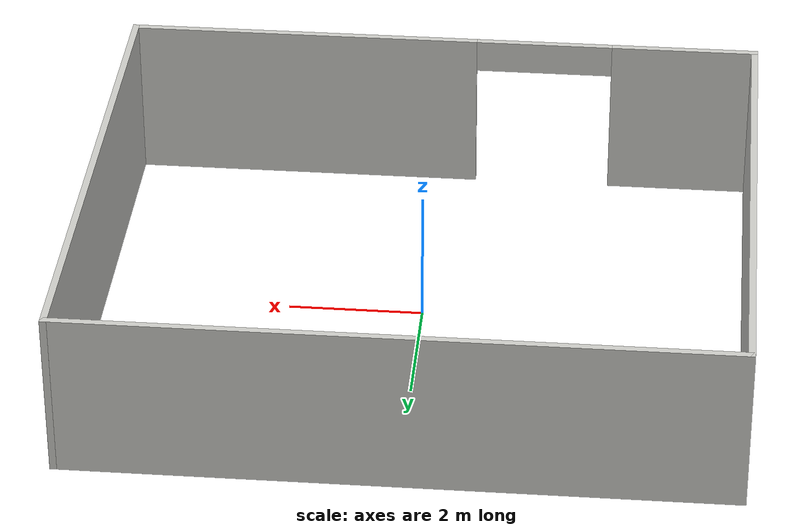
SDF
<?xml version='1.0'?>
<sdf version='1.6'>
  <model name='food_handling_unit'>
    <pose frame=''>0.011 0.19 0 0 -0 0</pose>
    <link name='Wall_5'>
      <collision name='Wall_5_Collision'>
        <geometry>
          <box>
            <size>9.70037 0.1 2.5</size>
          </box>
        </geometry>
        <pose frame=''>0 0 1.25 0 -0 0</pose>
      </collision>
      <visual name='Wall_5_Visual'>
        <pose frame=''>0 0 1.25 0 -0 0</pose>
        <geometry>
          <box>
            <size>9.70037 0.1 2.5</size>
          </box>
        </geometry>
        <material>
          <script>
            <uri>file://media/materials/scripts/gazebo.material</uri>
            <name>Gazebo/CeilingTiled</name>
          </script>
          <ambient>1 1 1 1</ambient>
        </material>
        <meta>
          <layer>0</layer>
        </meta>
      </visual>
      <pose frame=''>-0 4.05 0 0 -0 0</pose>
    </link>
    <link name='Wall_6'>
      <collision name='Wall_6_Collision'>
        <geometry>
          <box>
            <size>8.20047 0.1 2.5</size>
          </box>
        </geometry>
        <pose frame=''>0 0 1.25 0 -0 0</pose>
      </collision>
      <visual name='Wall_6_Visual'>
        <pose frame=''>0 0 1.25 0 -0 0</pose>
        <geometry>
          <box>
            <size>8.20047 0.1 2.5</size>
          </box>
        </geometry>
        <material>
          <script>
            <uri>file://media/materials/scripts/gazebo.material</uri>
            <name>Gazebo/CeilingTiled</name>
          </script>
          <ambient>1 1 1 1</ambient>
        </material>
        <meta>
          <layer>0</layer>
        </meta>
      </visual>
      <pose frame=''>4.8 -0 0 0 -0 -1.5708</pose>
    </link>
    <link name='Wall_7'>
      <pose frame=''>-0 -4.05 0 0 -0 3.14159</pose>
      <visual name='Wall_7_Visual_0'>
        <pose frame=''>-2.16197 0 1.25 0 -0 0</pose>
        <geometry>
          <box>
            <size>5.3757 0.1 2.5</size>
          </box>
        </geometry>
        <material>
          <script>
            <uri>file://media/materials/scripts/gazebo.material</uri>
            <name>Gazebo/CeilingTiled</name>
          </script>
          <ambient>1 1 1 1</ambient>
        </material>
        <meta>
          <layer>0</layer>
        </meta>
      </visual>
      <collision name='Wall_7_Collision_0'>
        <geometry>
          <box>
            <size>5.3757 0.1 2.5</size>
          </box>
        </geometry>
        <pose frame=''>-2.16197 0 1.25 0 -0 0</pose>
      </collision>
      <visual name='Wall_7_Visual_1'>
        <pose frame=''>3.7301 0 1.25 0 -0 0</pose>
        <geometry>
          <box>
            <size>2.23943 0.1 2.5</size>
          </box>
        </geometry>
        <material>
          <script>
            <uri>file://media/materials/scripts/gazebo.material</uri>
            <name>Gazebo/CeilingTiled</name>
          </script>
          <ambient>1 1 1 1</ambient>
        </material>
        <meta>
          <layer>0</layer>
        </meta>
      </visual>
      <collision name='Wall_7_Collision_1'>
        <geometry>
          <box>
            <size>2.23943 0.1 2.5</size>
          </box>
        </geometry>
        <pose frame=''>3.7301 0 1.25 0 -0 0</pose>
      </collision>
      <visual name='Wall_7_Visual_2'>
        <pose frame=''>1.56813 0 2.25 0 -0 0</pose>
        <geometry>
          <box>
            <size>2.0845 0.1 0.5</size>
          </box>
        </geometry>
        <material>
          <script>
            <uri>file://media/materials/scripts/gazebo.material</uri>
            <name>Gazebo/CeilingTiled</name>
          </script>
          <ambient>1 1 1 1</ambient>
        </material>
        <meta>
          <layer>0</layer>
        </meta>
      </visual>
      <collision name='Wall_7_Collision_2'>
        <geometry>
          <box>
            <size>2.0845 0.1 0.5</size>
          </box>
        </geometry>
        <pose frame=''>1.56813 0 2.25 0 -0 0</pose>
      </collision>
    </link>
    <link name='Wall_8'>
      <collision name='Wall_8_Collision'>
        <geometry>
          <box>
            <size>8.19953 0.1 2.5</size>
          </box>
        </geometry>
        <pose frame=''>0 0 1.25 0 -0 0</pose>
      </collision>
      <visual name='Wall_8_Visual'>
        <pose frame=''>0 0 1.25 0 -0 0</pose>
        <geometry>
          <box>
            <size>8.19953 0.1 2.5</size>
          </box>
        </geometry>
        <material>
          <script>
            <uri>file://media/materials/scripts/gazebo.material</uri>
            <name>Gazebo/CeilingTiled</name>
          </script>
          <ambient>1 1 1 1</ambient>
        </material>
        <meta>
          <layer>0</layer>
        </meta>
      </visual>
      <pose frame=''>-4.8 -0 0 0 -0 1.5708</pose>
    </link>
    <static>1</static>
  </model>
</sdf>
